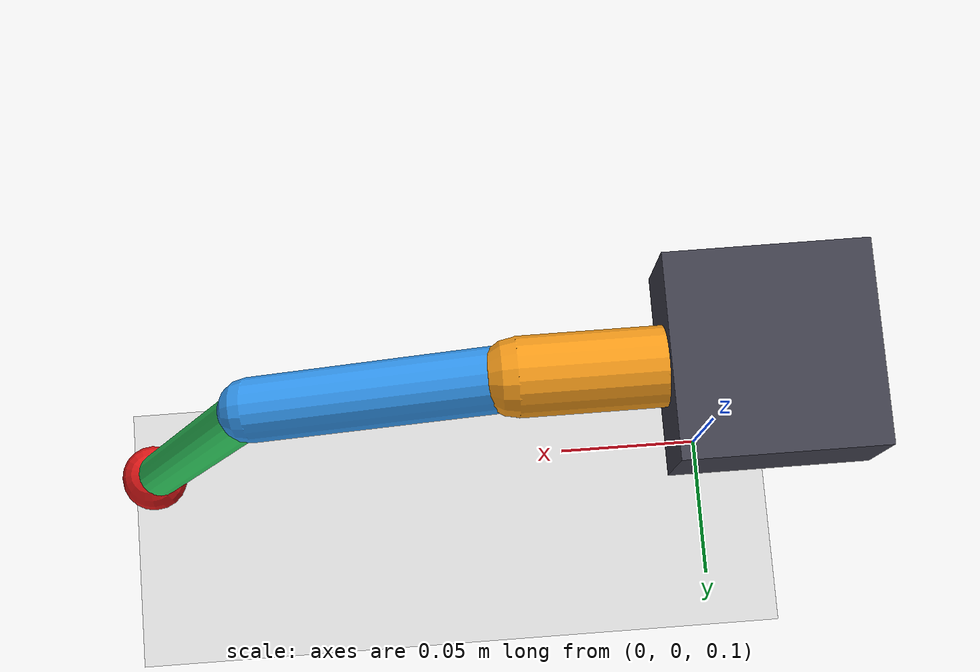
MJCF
<mujoco model="makeyourpet_one_leg">
  <!-- 編譯器設定：角度單位使用度數 (degree) -->
  <compiler angle="degree" coordinate="local"/>

  <!-- 物理選項：使用 implicitfast 隱式求解器，徹底根除數值剛性震盪 -->
  <option gravity="0 0 -9.81" timestep="0.002" integrator="implicitfast"/>

  <!-- 材質與視覺外觀 -->
  <asset>
    <material name="mat_base" rgba="0.25 0.25 0.3 1"/>
    <material name="mat_coxa" rgba="0.95 0.6 0.1 1"/>
    <material name="mat_femur" rgba="0.2 0.6 0.95 1"/>
    <material name="mat_tibia" rgba="0.2 0.85 0.4 1"/>
    <material name="mat_tip" rgba="0.9 0.1 0.1 1"/>
  </asset>

  <!-- 世界空間主體定義 -->
  <worldbody>
    <light diffuse="0.8 0.8 0.8" pos="0 0 1.5" dir="0 0 -1"/>
    <geom name="ground" type="plane" size="0.6 0.6 0.01" rgba="0.85 0.85 0.85 1"/>

    <!-- 懸吊測試基座：固定在離地 0.25m 高度，模擬實驗室吊臂架懸空測試 -->
    <body name="base_mount" pos="0 0 0.25">
      <geom name="mount_geom" type="box" size="0.03 0.03 0.015" material="mat_base"/>

      <!-- ================= 關節 1：Coxa (基座擺動節) ================= -->
      <body name="coxa_link" pos="0.03 0 0">
        <joint name="coxa_joint" type="hinge" axis="0 0 1" range="-45 45" damping="0.1"/>
        <!-- 加入真實舵機質量 60g (0.06kg) -->
        <geom name="coxa_geom" type="capsule" fromto="0 0 0 0.043 0 0" size="0.012" mass="0.06" material="mat_coxa"/>

        <!-- ================= 關節 2：Femur (大腿升降節) ================= -->
        <body name="femur_link" pos="0.043 0 0">
          <joint name="femur_joint" type="hinge" axis="0 1 0" range="-60 60" damping="0.1"/>
          <!-- 加入大腿與舵機質量 80g (0.08kg) -->
          <geom name="femur_geom" type="capsule" fromto="0 0 0 0.080 0 -0.02" size="0.010" mass="0.08" material="mat_femur"/>

          <!-- ================= 關節 3：Tibia (小腿屈伸節) ================= -->
          <body name="tibia_link" pos="0.080 0 -0.02">
            <joint name="tibia_joint" type="hinge" axis="0 1 0" range="-90 30" damping="0.1"/>
            <!-- 小腿骨架 50g -->
            <geom name="tibia_geom" type="capsule" fromto="0 0 0 0.05 0 -0.12" size="0.008" mass="0.05" material="mat_tibia"/>
            <!-- 腳尖接觸球體 10g -->
            <geom name="foot_tip" type="sphere" pos="0.05 0 -0.12" size="0.012" mass="0.01" material="mat_tip"/>
          </body>
        </body>
      </body>
    </body>
  </worldbody>

  <!-- 排除相鄰連桿間的自我干涉穿模 (Self-Collision Exclude) -->
  <contact>
    <exclude body1="base_mount" body2="coxa_link"/>
    <exclude body1="coxa_link" body2="femur_link"/>
    <exclude body1="femur_link" body2="tibia_link"/>
  </contact>

  <!-- 馬達致動器：設定真實舵機扭矩極限 (2.5 N·m) 與合理剛性 (kp=5.0) -->
  <actuator>
    <position name="motor_coxa" joint="coxa_joint" kp="5.0" kv="0.5" ctrlrange="-45 45" forcerange="-2.5 2.5"/>
    <position name="motor_femur" joint="femur_joint" kp="5.0" kv="0.5" ctrlrange="-60 60" forcerange="-2.5 2.5"/>
    <position name="motor_tibia" joint="tibia_joint" kp="5.0" kv="0.5" ctrlrange="-90 30" forcerange="-2.5 2.5"/>
  </actuator>
</mujoco>
